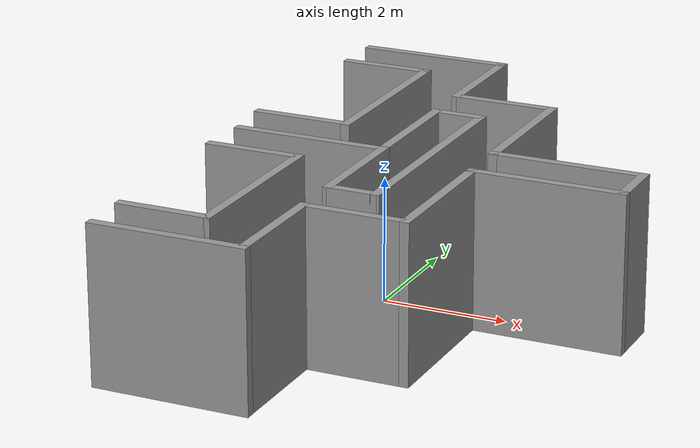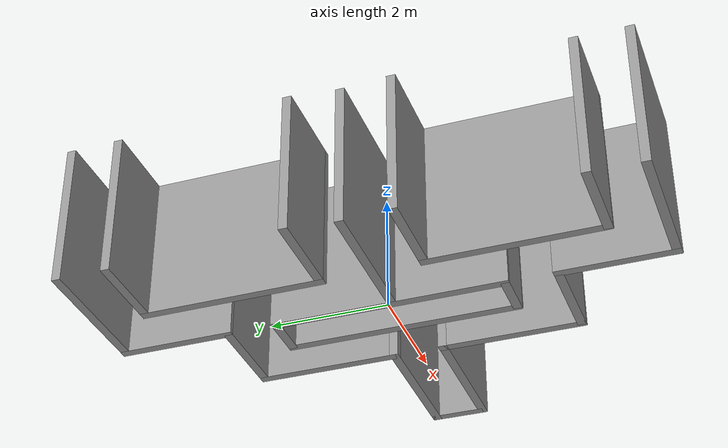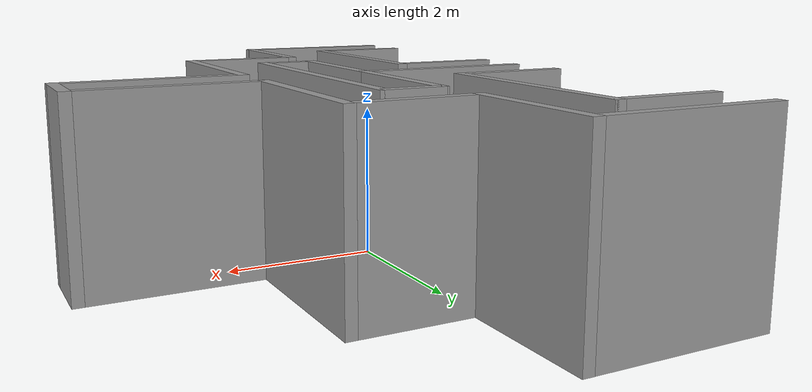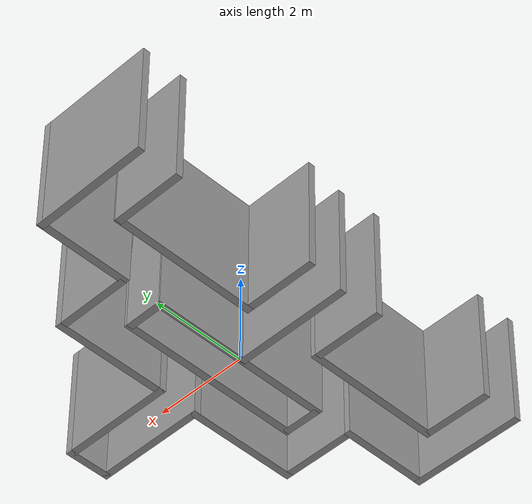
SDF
<?xml version='1.0'?>
<sdf version='1.7'>
  <model name='maze2.0'>
    <link name='Wall_101'>
      <pose>0.75 0 0 0 -0 1.5708</pose>
      <self_collide>0</self_collide>
      <enable_wind>0</enable_wind>
      <kinematic>0</kinematic>
      <visual name='Wall_101_Visual'>
        <pose>0 0 1.25 0 -0 0</pose>
        <geometry>
          <box>
            <size>4 0.15 2.5</size>
          </box>
        </geometry>
        <material>
          <script>
            <uri>file://media/materials/scripts/gazebo.material</uri>
            <name>Gazebo/Grey</name>
          </script>
          <ambient>1 1 1 1</ambient>
          <shader type='pixel'/>
        </material>
        <meta>
          <layer>0</layer>
        </meta>
        <transparency>0</transparency>
        <cast_shadows>1</cast_shadows>
      </visual>
      <collision name='Wall_101_Collision'>
        <laser_retro>0</laser_retro>
        <max_contacts>10</max_contacts>
        <pose>0 0 1.25 0 -0 0</pose>
        <geometry>
          <box>
            <size>4 0.15 2.5</size>
          </box>
        </geometry>
        <surface>
          <friction>
            <ode>
              <mu>1</mu>
              <mu2>1</mu2>
              <fdir1>0 0 0</fdir1>
              <slip1>0</slip1>
              <slip2>0</slip2>
            </ode>
            <torsional>
              <coefficient>1</coefficient>
              <patch_radius>0</patch_radius>
              <surface_radius>0</surface_radius>
              <use_patch_radius>1</use_patch_radius>
              <ode>
                <slip>0</slip>
              </ode>
            </torsional>
          </friction>
          <bounce>
            <restitution_coefficient>0</restitution_coefficient>
            <threshold>1e+06</threshold>
          </bounce>
          <contact>
            <collide_without_contact>0</collide_without_contact>
            <collide_without_contact_bitmask>1</collide_without_contact_bitmask>
            <collide_bitmask>1</collide_bitmask>
            <ode>
              <soft_cfm>0</soft_cfm>
              <soft_erp>0.2</soft_erp>
              <kp>1e+13</kp>
              <kd>1</kd>
              <max_vel>0.01</max_vel>
              <min_depth>0</min_depth>
            </ode>
            <bullet>
              <split_impulse>1</split_impulse>
              <split_impulse_penetration_threshold>-0.01</split_impulse_penetration_threshold>
              <soft_cfm>0</soft_cfm>
              <soft_erp>0.2</soft_erp>
              <kp>1e+13</kp>
              <kd>1</kd>
            </bullet>
          </contact>
        </surface>
      </collision>
    </link>
    <link name='Wall_105'>
      <pose>0.774711 2.77479 0 0 -0 0</pose>
      <self_collide>0</self_collide>
      <enable_wind>0</enable_wind>
      <kinematic>0</kinematic>
      <inertial>
        <inertia>
          <ixx>0</ixx>
          <ixy>0</ixy>
          <ixz>0</ixz>
          <iyy>0</iyy>
          <iyz>0</iyz>
          <izz>0</izz>
        </inertia>
        <mass>0</mass>
        <pose>0 0 0 0 -0 0</pose>
      </inertial>
      <visual name='Wall_105_Visual'>
        <pose>0 0 1.25 0 -0 0</pose>
        <geometry>
          <box>
            <size>1.53068 0.15 2.5</size>
          </box>
        </geometry>
        <material>
          <script>
            <uri>file://media/materials/scripts/gazebo.material</uri>
            <name>Gazebo/Grey</name>
          </script>
          <ambient>1 1 1 1</ambient>
          <shader type='pixel'/>
        </material>
        <meta>
          <layer>0</layer>
        </meta>
        <transparency>0</transparency>
        <cast_shadows>1</cast_shadows>
      </visual>
      <collision name='Wall_105_Collision'>
        <laser_retro>0</laser_retro>
        <max_contacts>10</max_contacts>
        <pose>0 0 1.25 0 -0 0</pose>
        <geometry>
          <box>
            <size>1.53068 0.15 2.5</size>
          </box>
        </geometry>
        <surface>
          <friction>
            <ode>
              <mu>1</mu>
              <mu2>1</mu2>
              <fdir1>0 0 0</fdir1>
              <slip1>0</slip1>
              <slip2>0</slip2>
            </ode>
            <torsional>
              <coefficient>1</coefficient>
              <patch_radius>0</patch_radius>
              <surface_radius>0</surface_radius>
              <use_patch_radius>1</use_patch_radius>
              <ode>
                <slip>0</slip>
              </ode>
            </torsional>
          </friction>
          <bounce>
            <restitution_coefficient>0</restitution_coefficient>
            <threshold>1e+06</threshold>
          </bounce>
          <contact>
            <collide_without_contact>0</collide_without_contact>
            <collide_without_contact_bitmask>1</collide_without_contact_bitmask>
            <collide_bitmask>1</collide_bitmask>
            <ode>
              <soft_cfm>0</soft_cfm>
              <soft_erp>0.2</soft_erp>
              <kp>1e+13</kp>
              <kd>1</kd>
              <max_vel>0.01</max_vel>
              <min_depth>0</min_depth>
            </ode>
            <bullet>
              <split_impulse>1</split_impulse>
              <split_impulse_penetration_threshold>-0.01</split_impulse_penetration_threshold>
              <soft_cfm>0</soft_cfm>
              <soft_erp>0.2</soft_erp>
              <kp>1e+13</kp>
              <kd>1</kd>
            </bullet>
          </contact>
        </surface>
      </collision>
    </link>
    <link name='Wall_108'>
      <pose>0 -3.7 0 0 0 -1.5708</pose>
      <self_collide>0</self_collide>
      <enable_wind>0</enable_wind>
      <kinematic>0</kinematic>
      <gravity>1</gravity>
      <inertial>
        <mass>1</mass>
        <pose>0 0 0 0 -0 0</pose>
        <inertia>
          <ixx>1</ixx>
          <ixy>0</ixy>
          <ixz>0</ixz>
          <iyy>1</iyy>
          <iyz>0</iyz>
          <izz>1</izz>
        </inertia>
      </inertial>
      <visual name='Wall_108_Visual'>
        <pose>0 0 1.25 0 -0 0</pose>
        <geometry>
          <box>
            <size>2 0.15 2.5</size>
          </box>
        </geometry>
        <material>
          <script>
            <uri>file://media/materials/scripts/gazebo.material</uri>
            <name>Gazebo/Grey</name>
          </script>
          <ambient>1 1 1 1</ambient>
          <shader type='pixel'>
            <normal_map>__default__</normal_map>
          </shader>
          <diffuse>0.7 0.7 0.7 1</diffuse>
          <specular>0.01 0.01 0.01 1</specular>
          <emissive>0 0 0 1</emissive>
        </material>
        <meta>
          <layer>0</layer>
        </meta>
        <transparency>0</transparency>
        <cast_shadows>1</cast_shadows>
      </visual>
      <collision name='Wall_108_Collision'>
        <laser_retro>0</laser_retro>
        <max_contacts>10</max_contacts>
        <pose>0 0 1.25 0 -0 0</pose>
        <geometry>
          <box>
            <size>2 0.15 2.5</size>
          </box>
        </geometry>
        <surface>
          <friction>
            <ode>
              <mu>1</mu>
              <mu2>1</mu2>
              <fdir1>0 0 0</fdir1>
              <slip1>0</slip1>
              <slip2>0</slip2>
            </ode>
            <torsional>
              <coefficient>1</coefficient>
              <patch_radius>0</patch_radius>
              <surface_radius>0</surface_radius>
              <use_patch_radius>1</use_patch_radius>
              <ode>
                <slip>0</slip>
              </ode>
            </torsional>
          </friction>
          <bounce>
            <restitution_coefficient>0</restitution_coefficient>
            <threshold>1e+06</threshold>
          </bounce>
          <contact>
            <collide_without_contact>0</collide_without_contact>
            <collide_without_contact_bitmask>1</collide_without_contact_bitmask>
            <collide_bitmask>1</collide_bitmask>
            <ode>
              <soft_cfm>0</soft_cfm>
              <soft_erp>0.2</soft_erp>
              <kp>1e+13</kp>
              <kd>1</kd>
              <max_vel>0.01</max_vel>
              <min_depth>0</min_depth>
            </ode>
            <bullet>
              <split_impulse>1</split_impulse>
              <split_impulse_penetration_threshold>-0.01</split_impulse_penetration_threshold>
              <soft_cfm>0</soft_cfm>
              <soft_erp>0.2</soft_erp>
              <kp>1e+13</kp>
              <kd>1</kd>
            </bullet>
          </contact>
        </surface>
      </collision>
    </link>
    <link name='Wall_109'>
      <pose>-1.17194 -4.625 0 0 -0 3.14159</pose>
      <self_collide>0</self_collide>
      <enable_wind>0</enable_wind>
      <kinematic>0</kinematic>
      <gravity>1</gravity>
      <inertial>
        <mass>1</mass>
        <pose>0 0 0 0 -0 0</pose>
        <inertia>
          <ixx>1</ixx>
          <ixy>0</ixy>
          <ixz>0</ixz>
          <iyy>1</iyy>
          <iyz>0</iyz>
          <izz>1</izz>
        </inertia>
      </inertial>
      <visual name='Wall_109_Visual'>
        <pose>0 0 1.25 0 -0 0</pose>
        <geometry>
          <box>
            <size>2.5 0.15 2.5</size>
          </box>
        </geometry>
        <material>
          <script>
            <uri>file://media/materials/scripts/gazebo.material</uri>
            <name>Gazebo/Grey</name>
          </script>
          <ambient>1 1 1 1</ambient>
          <shader type='pixel'>
            <normal_map>__default__</normal_map>
          </shader>
          <diffuse>0.7 0.7 0.7 1</diffuse>
          <specular>0.01 0.01 0.01 1</specular>
          <emissive>0 0 0 1</emissive>
        </material>
        <meta>
          <layer>0</layer>
        </meta>
        <transparency>0</transparency>
        <cast_shadows>1</cast_shadows>
      </visual>
      <collision name='Wall_109_Collision'>
        <laser_retro>0</laser_retro>
        <max_contacts>10</max_contacts>
        <pose>0 0 1.25 0 -0 0</pose>
        <geometry>
          <box>
            <size>2.5 0.15 2.5</size>
          </box>
        </geometry>
        <surface>
          <friction>
            <ode>
              <mu>1</mu>
              <mu2>1</mu2>
              <fdir1>0 0 0</fdir1>
              <slip1>0</slip1>
              <slip2>0</slip2>
            </ode>
            <torsional>
              <coefficient>1</coefficient>
              <patch_radius>0</patch_radius>
              <surface_radius>0</surface_radius>
              <use_patch_radius>1</use_patch_radius>
              <ode>
                <slip>0</slip>
              </ode>
            </torsional>
          </friction>
          <bounce>
            <restitution_coefficient>0</restitution_coefficient>
            <threshold>1e+06</threshold>
          </bounce>
          <contact>
            <collide_without_contact>0</collide_without_contact>
            <collide_without_contact_bitmask>1</collide_without_contact_bitmask>
            <collide_bitmask>1</collide_bitmask>
            <ode>
              <soft_cfm>0</soft_cfm>
              <soft_erp>0.2</soft_erp>
              <kp>1e+13</kp>
              <kd>1</kd>
              <max_vel>0.01</max_vel>
              <min_depth>0</min_depth>
            </ode>
            <bullet>
              <split_impulse>1</split_impulse>
              <split_impulse_penetration_threshold>-0.01</split_impulse_penetration_threshold>
              <soft_cfm>0</soft_cfm>
              <soft_erp>0.2</soft_erp>
              <kp>1e+13</kp>
              <kd>1</kd>
            </bullet>
          </contact>
        </surface>
      </collision>
    </link>
    <link name='Wall_111'>
      <pose>0 3.7011 0 0 -0 1.5708</pose>
      <self_collide>0</self_collide>
      <enable_wind>0</enable_wind>
      <kinematic>0</kinematic>
      <gravity>1</gravity>
      <inertial>
        <mass>1</mass>
        <pose>0 0 0 0 -0 0</pose>
        <inertia>
          <ixx>1</ixx>
          <ixy>0</ixy>
          <ixz>0</ixz>
          <iyy>1</iyy>
          <iyz>0</iyz>
          <izz>1</izz>
        </inertia>
      </inertial>
      <visual name='Wall_111_Visual'>
        <pose>0 0 1.25 0 -0 0</pose>
        <geometry>
          <box>
            <size>2 0.15 2.5</size>
          </box>
        </geometry>
        <material>
          <script>
            <uri>file://media/materials/scripts/gazebo.material</uri>
            <name>Gazebo/Grey</name>
          </script>
          <ambient>1 1 1 1</ambient>
          <shader type='pixel'>
            <normal_map>__default__</normal_map>
          </shader>
          <diffuse>0.7 0.7 0.7 1</diffuse>
          <specular>0.01 0.01 0.01 1</specular>
          <emissive>0 0 0 1</emissive>
        </material>
        <meta>
          <layer>0</layer>
        </meta>
        <transparency>0</transparency>
        <cast_shadows>1</cast_shadows>
      </visual>
      <collision name='Wall_111_Collision'>
        <laser_retro>0</laser_retro>
        <max_contacts>10</max_contacts>
        <pose>0 0 1.25 0 -0 0</pose>
        <geometry>
          <box>
            <size>2 0.15 2.5</size>
          </box>
        </geometry>
        <surface>
          <friction>
            <ode>
              <mu>1</mu>
              <mu2>1</mu2>
              <fdir1>0 0 0</fdir1>
              <slip1>0</slip1>
              <slip2>0</slip2>
            </ode>
            <torsional>
              <coefficient>1</coefficient>
              <patch_radius>0</patch_radius>
              <surface_radius>0</surface_radius>
              <use_patch_radius>1</use_patch_radius>
              <ode>
                <slip>0</slip>
              </ode>
            </torsional>
          </friction>
          <bounce>
            <restitution_coefficient>0</restitution_coefficient>
            <threshold>1e+06</threshold>
          </bounce>
          <contact>
            <collide_without_contact>0</collide_without_contact>
            <collide_without_contact_bitmask>1</collide_without_contact_bitmask>
            <collide_bitmask>1</collide_bitmask>
            <ode>
              <soft_cfm>0</soft_cfm>
              <soft_erp>0.2</soft_erp>
              <kp>1e+13</kp>
              <kd>1</kd>
              <max_vel>0.01</max_vel>
              <min_depth>0</min_depth>
            </ode>
            <bullet>
              <split_impulse>1</split_impulse>
              <split_impulse_penetration_threshold>-0.01</split_impulse_penetration_threshold>
              <soft_cfm>0</soft_cfm>
              <soft_erp>0.2</soft_erp>
              <kp>1e+13</kp>
              <kd>1</kd>
            </bullet>
          </contact>
        </surface>
      </collision>
    </link>
    <link name='Wall_112'>
      <pose>-1.1964 4.625 0 0 -0 3.14159</pose>
      <self_collide>0</self_collide>
      <enable_wind>0</enable_wind>
      <kinematic>0</kinematic>
      <visual name='Wall_112_Visual'>
        <pose>0 0 1.25 0 -0 0</pose>
        <geometry>
          <box>
            <size>2.5 0.15 2.5</size>
          </box>
        </geometry>
        <material>
          <script>
            <uri>file://media/materials/scripts/gazebo.material</uri>
            <name>Gazebo/Grey</name>
          </script>
          <ambient>1 1 1 1</ambient>
          <shader type='pixel'/>
        </material>
        <meta>
          <layer>0</layer>
        </meta>
        <transparency>0</transparency>
        <cast_shadows>1</cast_shadows>
      </visual>
      <collision name='Wall_112_Collision'>
        <laser_retro>0</laser_retro>
        <max_contacts>10</max_contacts>
        <pose>0 0 1.25 0 -0 0</pose>
        <geometry>
          <box>
            <size>2.5 0.15 2.5</size>
          </box>
        </geometry>
        <surface>
          <friction>
            <ode>
              <mu>1</mu>
              <mu2>1</mu2>
              <fdir1>0 0 0</fdir1>
              <slip1>0</slip1>
              <slip2>0</slip2>
            </ode>
            <torsional>
              <coefficient>1</coefficient>
              <patch_radius>0</patch_radius>
              <surface_radius>0</surface_radius>
              <use_patch_radius>1</use_patch_radius>
              <ode>
                <slip>0</slip>
              </ode>
            </torsional>
          </friction>
          <bounce>
            <restitution_coefficient>0</restitution_coefficient>
            <threshold>1e+06</threshold>
          </bounce>
          <contact>
            <collide_without_contact>0</collide_without_contact>
            <collide_without_contact_bitmask>1</collide_without_contact_bitmask>
            <collide_bitmask>1</collide_bitmask>
            <ode>
              <soft_cfm>0</soft_cfm>
              <soft_erp>0.2</soft_erp>
              <kp>1e+13</kp>
              <kd>1</kd>
              <max_vel>0.01</max_vel>
              <min_depth>0</min_depth>
            </ode>
            <bullet>
              <split_impulse>1</split_impulse>
              <split_impulse_penetration_threshold>-0.01</split_impulse_penetration_threshold>
              <soft_cfm>0</soft_cfm>
              <soft_erp>0.2</soft_erp>
              <kp>1e+13</kp>
              <kd>1</kd>
            </bullet>
          </contact>
        </surface>
      </collision>
    </link>
    <link name='Wall_115'>
      <pose>-1.7 -3.775 0 0 -0 0</pose>
      <self_collide>0</self_collide>
      <enable_wind>0</enable_wind>
      <kinematic>0</kinematic>
      <gravity>1</gravity>
      <inertial>
        <mass>1</mass>
        <pose>0 0 0 0 -0 0</pose>
        <inertia>
          <ixx>1</ixx>
          <ixy>0</ixy>
          <ixz>0</ixz>
          <iyy>1</iyy>
          <iyz>0</iyz>
          <izz>1</izz>
        </inertia>
      </inertial>
      <visual name='Wall_115_Visual'>
        <pose>0 0 1.25 0 -0 0</pose>
        <geometry>
          <box>
            <size>1.5 0.15 2.5</size>
          </box>
        </geometry>
        <material>
          <script>
            <uri>file://media/materials/scripts/gazebo.material</uri>
            <name>Gazebo/Grey</name>
          </script>
          <ambient>1 1 1 1</ambient>
          <shader type='pixel'>
            <normal_map>__default__</normal_map>
          </shader>
          <diffuse>0.7 0.7 0.7 1</diffuse>
          <specular>0.01 0.01 0.01 1</specular>
          <emissive>0 0 0 1</emissive>
        </material>
        <meta>
          <layer>0</layer>
        </meta>
        <transparency>0</transparency>
        <cast_shadows>1</cast_shadows>
      </visual>
      <collision name='Wall_115_Collision'>
        <laser_retro>0</laser_retro>
        <max_contacts>10</max_contacts>
        <pose>0 0 1.25 0 -0 0</pose>
        <geometry>
          <box>
            <size>1.5 0.15 2.5</size>
          </box>
        </geometry>
        <surface>
          <friction>
            <ode>
              <mu>1</mu>
              <mu2>1</mu2>
              <fdir1>0 0 0</fdir1>
              <slip1>0</slip1>
              <slip2>0</slip2>
            </ode>
            <torsional>
              <coefficient>1</coefficient>
              <patch_radius>0</patch_radius>
              <surface_radius>0</surface_radius>
              <use_patch_radius>1</use_patch_radius>
              <ode>
                <slip>0</slip>
              </ode>
            </torsional>
          </friction>
          <bounce>
            <restitution_coefficient>0</restitution_coefficient>
            <threshold>1e+06</threshold>
          </bounce>
          <contact>
            <collide_without_contact>0</collide_without_contact>
            <collide_without_contact_bitmask>1</collide_without_contact_bitmask>
            <collide_bitmask>1</collide_bitmask>
            <ode>
              <soft_cfm>0</soft_cfm>
              <soft_erp>0.2</soft_erp>
              <kp>1e+13</kp>
              <kd>1</kd>
              <max_vel>0.01</max_vel>
              <min_depth>0</min_depth>
            </ode>
            <bullet>
              <split_impulse>1</split_impulse>
              <split_impulse_penetration_threshold>-0.01</split_impulse_penetration_threshold>
              <soft_cfm>0</soft_cfm>
              <soft_erp>0.2</soft_erp>
              <kp>1e+13</kp>
              <kd>1</kd>
            </bullet>
          </contact>
        </surface>
      </collision>
    </link>
    <link name='Wall_119'>
      <pose>-1.77392 -0.925 0 0 -0 0</pose>
      <self_collide>0</self_collide>
      <enable_wind>0</enable_wind>
      <kinematic>0</kinematic>
      <visual name='Wall_119_Visual'>
        <pose>0 0 1.25 0 -0 0</pose>
        <geometry>
          <box>
            <size>1.5 0.15 2.5</size>
          </box>
        </geometry>
        <material>
          <script>
            <uri>file://media/materials/scripts/gazebo.material</uri>
            <name>Gazebo/Grey</name>
          </script>
          <ambient>1 1 1 1</ambient>
          <shader type='pixel'/>
        </material>
        <meta>
          <layer>0</layer>
        </meta>
        <transparency>0</transparency>
        <cast_shadows>1</cast_shadows>
      </visual>
      <collision name='Wall_119_Collision'>
        <laser_retro>0</laser_retro>
        <max_contacts>10</max_contacts>
        <pose>0 0 1.25 0 -0 0</pose>
        <geometry>
          <box>
            <size>1.5 0.15 2.5</size>
          </box>
        </geometry>
        <surface>
          <friction>
            <ode>
              <mu>1</mu>
              <mu2>1</mu2>
              <fdir1>0 0 0</fdir1>
              <slip1>0</slip1>
              <slip2>0</slip2>
            </ode>
            <torsional>
              <coefficient>1</coefficient>
              <patch_radius>0</patch_radius>
              <surface_radius>0</surface_radius>
              <use_patch_radius>1</use_patch_radius>
              <ode>
                <slip>0</slip>
              </ode>
            </torsional>
          </friction>
          <bounce>
            <restitution_coefficient>0</restitution_coefficient>
            <threshold>1e+06</threshold>
          </bounce>
          <contact>
            <collide_without_contact>0</collide_without_contact>
            <collide_without_contact_bitmask>1</collide_without_contact_bitmask>
            <collide_bitmask>1</collide_bitmask>
            <ode>
              <soft_cfm>0</soft_cfm>
              <soft_erp>0.2</soft_erp>
              <kp>1e+13</kp>
              <kd>1</kd>
              <max_vel>0.01</max_vel>
              <min_depth>0</min_depth>
            </ode>
            <bullet>
              <split_impulse>1</split_impulse>
              <split_impulse_penetration_threshold>-0.01</split_impulse_penetration_threshold>
              <soft_cfm>0</soft_cfm>
              <soft_erp>0.2</soft_erp>
              <kp>1e+13</kp>
              <kd>1</kd>
            </bullet>
          </contact>
        </surface>
      </collision>
    </link>
    <link name='Wall_120'>
      <pose>-1 -2.35 0 0 0 -1.5708</pose>
      <self_collide>0</self_collide>
      <enable_wind>0</enable_wind>
      <kinematic>0</kinematic>
      <gravity>1</gravity>
      <inertial>
        <mass>1</mass>
        <pose>0 0 0 0 -0 0</pose>
        <inertia>
          <ixx>1</ixx>
          <ixy>0</ixy>
          <ixz>0</ixz>
          <iyy>1</iyy>
          <iyz>0</iyz>
          <izz>1</izz>
        </inertia>
      </inertial>
      <visual name='Wall_120_Visual'>
        <pose>0 0 1.25 0 -0 0</pose>
        <geometry>
          <box>
            <size>3 0.15 2.5</size>
          </box>
        </geometry>
        <material>
          <script>
            <uri>file://media/materials/scripts/gazebo.material</uri>
            <name>Gazebo/Grey</name>
          </script>
          <ambient>1 1 1 1</ambient>
          <shader type='pixel'>
            <normal_map>__default__</normal_map>
          </shader>
          <diffuse>0.7 0.7 0.7 1</diffuse>
          <specular>0.01 0.01 0.01 1</specular>
          <emissive>0 0 0 1</emissive>
        </material>
        <meta>
          <layer>0</layer>
        </meta>
        <transparency>0</transparency>
        <cast_shadows>1</cast_shadows>
      </visual>
      <collision name='Wall_120_Collision'>
        <laser_retro>0</laser_retro>
        <max_contacts>10</max_contacts>
        <pose>0 0 1.25 0 -0 0</pose>
        <geometry>
          <box>
            <size>3 0.15 2.5</size>
          </box>
        </geometry>
        <surface>
          <friction>
            <ode>
              <mu>1</mu>
              <mu2>1</mu2>
              <fdir1>0 0 0</fdir1>
              <slip1>0</slip1>
              <slip2>0</slip2>
            </ode>
            <torsional>
              <coefficient>1</coefficient>
              <patch_radius>0</patch_radius>
              <surface_radius>0</surface_radius>
              <use_patch_radius>1</use_patch_radius>
              <ode>
                <slip>0</slip>
              </ode>
            </torsional>
          </friction>
          <bounce>
            <restitution_coefficient>0</restitution_coefficient>
            <threshold>1e+06</threshold>
          </bounce>
          <contact>
            <collide_without_contact>0</collide_without_contact>
            <collide_without_contact_bitmask>1</collide_without_contact_bitmask>
            <collide_bitmask>1</collide_bitmask>
            <ode>
              <soft_cfm>0</soft_cfm>
              <soft_erp>0.2</soft_erp>
              <kp>1e+13</kp>
              <kd>1</kd>
              <max_vel>0.01</max_vel>
              <min_depth>0</min_depth>
            </ode>
            <bullet>
              <split_impulse>1</split_impulse>
              <split_impulse_penetration_threshold>-0.01</split_impulse_penetration_threshold>
              <soft_cfm>0</soft_cfm>
              <soft_erp>0.2</soft_erp>
              <kp>1e+13</kp>
              <kd>1</kd>
            </bullet>
          </contact>
        </surface>
      </collision>
    </link>
    <link name='Wall_123'>
      <pose>-1.82436 0.775 0 0 -0 0</pose>
      <self_collide>0</self_collide>
      <enable_wind>0</enable_wind>
      <kinematic>0</kinematic>
      <visual name='Wall_123_Visual'>
        <pose>0 0 1.25 0 -0 0</pose>
        <geometry>
          <box>
            <size>1.5 0.15 2.5</size>
          </box>
        </geometry>
        <material>
          <script>
            <uri>file://media/materials/scripts/gazebo.material</uri>
            <name>Gazebo/Grey</name>
          </script>
          <ambient>1 1 1 1</ambient>
          <shader type='pixel'/>
        </material>
        <meta>
          <layer>0</layer>
        </meta>
        <transparency>0</transparency>
        <cast_shadows>1</cast_shadows>
      </visual>
      <collision name='Wall_123_Collision'>
        <laser_retro>0</laser_retro>
        <max_contacts>10</max_contacts>
        <pose>0 0 1.25 0 -0 0</pose>
        <geometry>
          <box>
            <size>1.5 0.15 2.5</size>
          </box>
        </geometry>
        <surface>
          <friction>
            <ode>
              <mu>1</mu>
              <mu2>1</mu2>
              <fdir1>0 0 0</fdir1>
              <slip1>0</slip1>
              <slip2>0</slip2>
            </ode>
            <torsional>
              <coefficient>1</coefficient>
              <patch_radius>0</patch_radius>
              <surface_radius>0</surface_radius>
              <use_patch_radius>1</use_patch_radius>
              <ode>
                <slip>0</slip>
              </ode>
            </torsional>
          </friction>
          <bounce>
            <restitution_coefficient>0</restitution_coefficient>
            <threshold>1e+06</threshold>
          </bounce>
          <contact>
            <collide_without_contact>0</collide_without_contact>
            <collide_without_contact_bitmask>1</collide_without_contact_bitmask>
            <collide_bitmask>1</collide_bitmask>
            <ode>
              <soft_cfm>0</soft_cfm>
              <soft_erp>0.2</soft_erp>
              <kp>1e+13</kp>
              <kd>1</kd>
              <max_vel>0.01</max_vel>
              <min_depth>0</min_depth>
            </ode>
            <bullet>
              <split_impulse>1</split_impulse>
              <split_impulse_penetration_threshold>-0.01</split_impulse_penetration_threshold>
              <soft_cfm>0</soft_cfm>
              <soft_erp>0.2</soft_erp>
              <kp>1e+13</kp>
              <kd>1</kd>
            </bullet>
          </contact>
        </surface>
      </collision>
    </link>
    <link name='Wall_126'>
      <pose>-1.7 3.775 0 0 -0 0</pose>
      <self_collide>0</self_collide>
      <enable_wind>0</enable_wind>
      <kinematic>0</kinematic>
      <gravity>1</gravity>
      <inertial>
        <mass>1</mass>
        <pose>0 0 0 0 -0 0</pose>
        <inertia>
          <ixx>1</ixx>
          <ixy>0</ixy>
          <ixz>0</ixz>
          <iyy>1</iyy>
          <iyz>0</iyz>
          <izz>1</izz>
        </inertia>
      </inertial>
      <visual name='Wall_126_Visual'>
        <pose>0 0 1.25 0 -0 0</pose>
        <geometry>
          <box>
            <size>1.5 0.15 2.5</size>
          </box>
        </geometry>
        <material>
          <script>
            <uri>file://media/materials/scripts/gazebo.material</uri>
            <name>Gazebo/Grey</name>
          </script>
          <ambient>1 1 1 1</ambient>
          <shader type='pixel'>
            <normal_map>__default__</normal_map>
          </shader>
          <diffuse>0.7 0.7 0.7 1</diffuse>
          <specular>0.01 0.01 0.01 1</specular>
          <emissive>0 0 0 1</emissive>
        </material>
        <meta>
          <layer>0</layer>
        </meta>
        <transparency>0</transparency>
        <cast_shadows>1</cast_shadows>
      </visual>
      <collision name='Wall_126_Collision'>
        <laser_retro>0</laser_retro>
        <max_contacts>10</max_contacts>
        <pose>0 0 1.25 0 -0 0</pose>
        <geometry>
          <box>
            <size>1.5 0.15 2.5</size>
          </box>
        </geometry>
        <surface>
          <friction>
            <ode>
              <mu>1</mu>
              <mu2>1</mu2>
              <fdir1>0 0 0</fdir1>
              <slip1>0</slip1>
              <slip2>0</slip2>
            </ode>
            <torsional>
              <coefficient>1</coefficient>
              <patch_radius>0</patch_radius>
              <surface_radius>0</surface_radius>
              <use_patch_radius>1</use_patch_radius>
              <ode>
                <slip>0</slip>
              </ode>
            </torsional>
          </friction>
          <bounce>
            <restitution_coefficient>0</restitution_coefficient>
            <threshold>1e+06</threshold>
          </bounce>
          <contact>
            <collide_without_contact>0</collide_without_contact>
            <collide_without_contact_bitmask>1</collide_without_contact_bitmask>
            <collide_bitmask>1</collide_bitmask>
            <ode>
              <soft_cfm>0</soft_cfm>
              <soft_erp>0.2</soft_erp>
              <kp>1e+13</kp>
              <kd>1</kd>
              <max_vel>0.01</max_vel>
              <min_depth>0</min_depth>
            </ode>
            <bullet>
              <split_impulse>1</split_impulse>
              <split_impulse_penetration_threshold>-0.01</split_impulse_penetration_threshold>
              <soft_cfm>0</soft_cfm>
              <soft_erp>0.2</soft_erp>
              <kp>1e+13</kp>
              <kd>1</kd>
            </bullet>
          </contact>
        </surface>
      </collision>
    </link>
    <link name='Wall_127'>
      <pose>-1 2.275 0 0 0 -1.5708</pose>
      <self_collide>0</self_collide>
      <enable_wind>0</enable_wind>
      <kinematic>0</kinematic>
      <gravity>1</gravity>
      <inertial>
        <mass>1</mass>
        <pose>-0.05 0 0 0 -0 0</pose>
        <inertia>
          <ixx>1</ixx>
          <ixy>0</ixy>
          <ixz>0</ixz>
          <iyy>1</iyy>
          <iyz>0</iyz>
          <izz>1</izz>
        </inertia>
      </inertial>
      <visual name='Wall_127_Visual'>
        <pose>0 0 1.25 0 -0 0</pose>
        <geometry>
          <box>
            <size>3.15 0.15 2.5</size>
          </box>
        </geometry>
        <material>
          <script>
            <uri>file://media/materials/scripts/gazebo.material</uri>
            <name>Gazebo/Grey</name>
          </script>
          <ambient>1 1 1 1</ambient>
          <shader type='pixel'>
            <normal_map>__default__</normal_map>
          </shader>
          <diffuse>0.7 0.7 0.7 1</diffuse>
          <specular>0.01 0.01 0.01 1</specular>
          <emissive>0 0 0 1</emissive>
        </material>
        <meta>
          <layer>0</layer>
        </meta>
        <transparency>0</transparency>
        <cast_shadows>1</cast_shadows>
      </visual>
      <collision name='Wall_127_Collision'>
        <laser_retro>0</laser_retro>
        <max_contacts>10</max_contacts>
        <pose>0 0 1.25 0 -0 0</pose>
        <geometry>
          <box>
            <size>3.15 0.15 2.5</size>
          </box>
        </geometry>
        <surface>
          <friction>
            <ode>
              <mu>1</mu>
              <mu2>1</mu2>
              <fdir1>0 0 0</fdir1>
              <slip1>0</slip1>
              <slip2>0</slip2>
            </ode>
            <torsional>
              <coefficient>1</coefficient>
              <patch_radius>0</patch_radius>
              <surface_radius>0</surface_radius>
              <use_patch_radius>1</use_patch_radius>
              <ode>
                <slip>0</slip>
              </ode>
            </torsional>
          </friction>
          <bounce>
            <restitution_coefficient>0</restitution_coefficient>
            <threshold>1e+06</threshold>
          </bounce>
          <contact>
            <collide_without_contact>0</collide_without_contact>
            <collide_without_contact_bitmask>1</collide_without_contact_bitmask>
            <collide_bitmask>1</collide_bitmask>
            <ode>
              <soft_cfm>0</soft_cfm>
              <soft_erp>0.2</soft_erp>
              <kp>1e+13</kp>
              <kd>1</kd>
              <max_vel>0.01</max_vel>
              <min_depth>0</min_depth>
            </ode>
            <bullet>
              <split_impulse>1</split_impulse>
              <split_impulse_penetration_threshold>-0.01</split_impulse_penetration_threshold>
              <soft_cfm>0</soft_cfm>
              <soft_erp>0.2</soft_erp>
              <kp>1e+13</kp>
              <kd>1</kd>
            </bullet>
          </contact>
        </surface>
      </collision>
    </link>
    <link name='Wall_62'>
      <pose>3.95 0 0 0 0 -1.5708</pose>
      <self_collide>0</self_collide>
      <enable_wind>0</enable_wind>
      <kinematic>0</kinematic>
      <visual name='Wall_62_Visual'>
        <pose>0 0 1.25 0 -0 0</pose>
        <geometry>
          <box>
            <size>1 0.15 2.5</size>
          </box>
        </geometry>
        <material>
          <script>
            <uri>file://media/materials/scripts/gazebo.material</uri>
            <name>Gazebo/Grey</name>
          </script>
          <ambient>1 1 1 1</ambient>
          <shader type='pixel'/>
        </material>
        <meta>
          <layer>0</layer>
        </meta>
        <transparency>0</transparency>
        <cast_shadows>1</cast_shadows>
      </visual>
      <collision name='Wall_62_Collision'>
        <laser_retro>0</laser_retro>
        <max_contacts>10</max_contacts>
        <pose>0 0 1.25 0 -0 0</pose>
        <geometry>
          <box>
            <size>1 0.15 2.5</size>
          </box>
        </geometry>
        <surface>
          <friction>
            <ode>
              <mu>1</mu>
              <mu2>1</mu2>
              <fdir1>0 0 0</fdir1>
              <slip1>0</slip1>
              <slip2>0</slip2>
            </ode>
            <torsional>
              <coefficient>1</coefficient>
              <patch_radius>0</patch_radius>
              <surface_radius>0</surface_radius>
              <use_patch_radius>1</use_patch_radius>
              <ode>
                <slip>0</slip>
              </ode>
            </torsional>
          </friction>
          <bounce>
            <restitution_coefficient>0</restitution_coefficient>
            <threshold>1e+06</threshold>
          </bounce>
          <contact>
            <collide_without_contact>0</collide_without_contact>
            <collide_without_contact_bitmask>1</collide_without_contact_bitmask>
            <collide_bitmask>1</collide_bitmask>
            <ode>
              <soft_cfm>0</soft_cfm>
              <soft_erp>0.2</soft_erp>
              <kp>1e+13</kp>
              <kd>1</kd>
              <max_vel>0.01</max_vel>
              <min_depth>0</min_depth>
            </ode>
            <bullet>
              <split_impulse>1</split_impulse>
              <split_impulse_penetration_threshold>-0.01</split_impulse_penetration_threshold>
              <soft_cfm>0</soft_cfm>
              <soft_erp>0.2</soft_erp>
              <kp>1e+13</kp>
              <kd>1</kd>
            </bullet>
          </contact>
        </surface>
      </collision>
    </link>
    <link name='Wall_64'>
      <pose>2.775 0.425 0 0 -0 3.14159</pose>
      <self_collide>0</self_collide>
      <enable_wind>0</enable_wind>
      <kinematic>0</kinematic>
      <visual name='Wall_64_Visual'>
        <pose>0 0 1.25 0 -0 0</pose>
        <geometry>
          <box>
            <size>2.5 0.15 2.5</size>
          </box>
        </geometry>
        <material>
          <script>
            <uri>file://media/materials/scripts/gazebo.material</uri>
            <name>Gazebo/Grey</name>
          </script>
          <ambient>1 1 1 1</ambient>
          <shader type='pixel'/>
        </material>
        <meta>
          <layer>0</layer>
        </meta>
        <transparency>0</transparency>
        <cast_shadows>1</cast_shadows>
      </visual>
      <collision name='Wall_64_Collision'>
        <laser_retro>0</laser_retro>
        <max_contacts>10</max_contacts>
        <pose>0 0 1.25 0 -0 0</pose>
        <geometry>
          <box>
            <size>2.5 0.15 2.5</size>
          </box>
        </geometry>
        <surface>
          <friction>
            <ode>
              <mu>1</mu>
              <mu2>1</mu2>
              <fdir1>0 0 0</fdir1>
              <slip1>0</slip1>
              <slip2>0</slip2>
            </ode>
            <torsional>
              <coefficient>1</coefficient>
              <patch_radius>0</patch_radius>
              <surface_radius>0</surface_radius>
              <use_patch_radius>1</use_patch_radius>
              <ode>
                <slip>0</slip>
              </ode>
            </torsional>
          </friction>
          <bounce>
            <restitution_coefficient>0</restitution_coefficient>
            <threshold>1e+06</threshold>
          </bounce>
          <contact>
            <collide_without_contact>0</collide_without_contact>
            <collide_without_contact_bitmask>1</collide_without_contact_bitmask>
            <collide_bitmask>1</collide_bitmask>
            <ode>
              <soft_cfm>0</soft_cfm>
              <soft_erp>0.2</soft_erp>
              <kp>1e+13</kp>
              <kd>1</kd>
              <max_vel>0.01</max_vel>
              <min_depth>0</min_depth>
            </ode>
            <bullet>
              <split_impulse>1</split_impulse>
              <split_impulse_penetration_threshold>-0.01</split_impulse_penetration_threshold>
              <soft_cfm>0</soft_cfm>
              <soft_erp>0.2</soft_erp>
              <kp>1e+13</kp>
              <kd>1</kd>
            </bullet>
          </contact>
        </surface>
      </collision>
    </link>
    <link name='Wall_66'>
      <pose>2.775 -0.425 0 0 -0 3.14159</pose>
      <self_collide>0</self_collide>
      <enable_wind>0</enable_wind>
      <kinematic>0</kinematic>
      <visual name='Wall_66_Visual'>
        <pose>0 0 1.25 0 -0 0</pose>
        <geometry>
          <box>
            <size>2.5 0.15 2.5</size>
          </box>
        </geometry>
        <material>
          <script>
            <uri>file://media/materials/scripts/gazebo.material</uri>
            <name>Gazebo/Grey</name>
          </script>
          <ambient>1 1 1 1</ambient>
          <shader type='pixel'/>
        </material>
        <meta>
          <layer>0</layer>
        </meta>
        <transparency>0</transparency>
        <cast_shadows>1</cast_shadows>
      </visual>
      <collision name='Wall_66_Collision'>
        <laser_retro>0</laser_retro>
        <max_contacts>10</max_contacts>
        <pose>0 0 1.25 0 -0 0</pose>
        <geometry>
          <box>
            <size>2.5 0.15 2.5</size>
          </box>
        </geometry>
        <surface>
          <friction>
            <ode>
              <mu>1</mu>
              <mu2>1</mu2>
              <fdir1>0 0 0</fdir1>
              <slip1>0</slip1>
              <slip2>0</slip2>
            </ode>
            <torsional>
              <coefficient>1</coefficient>
              <patch_radius>0</patch_radius>
              <surface_radius>0</surface_radius>
              <use_patch_radius>1</use_patch_radius>
              <ode>
                <slip>0</slip>
              </ode>
            </torsional>
          </friction>
          <bounce>
            <restitution_coefficient>0</restitution_coefficient>
            <threshold>1e+06</threshold>
          </bounce>
          <contact>
            <collide_without_contact>0</collide_without_contact>
            <collide_without_contact_bitmask>1</collide_without_contact_bitmask>
            <collide_bitmask>1</collide_bitmask>
            <ode>
              <soft_cfm>0</soft_cfm>
              <soft_erp>0.2</soft_erp>
              <kp>1e+13</kp>
              <kd>1</kd>
              <max_vel>0.01</max_vel>
              <min_depth>0</min_depth>
            </ode>
            <bullet>
              <split_impulse>1</split_impulse>
              <split_impulse_penetration_threshold>-0.01</split_impulse_penetration_threshold>
              <soft_cfm>0</soft_cfm>
              <soft_erp>0.2</soft_erp>
              <kp>1e+13</kp>
              <kd>1</kd>
            </bullet>
          </contact>
        </surface>
      </collision>
    </link>
    <link name='Wall_68'>
      <pose>1.6 -1.6 0 0 0 -1.5708</pose>
      <self_collide>0</self_collide>
      <enable_wind>0</enable_wind>
      <kinematic>0</kinematic>
      <visual name='Wall_68_Visual'>
        <pose>0 0 1.25 0 -0 0</pose>
        <geometry>
          <box>
            <size>2.5 0.15 2.5</size>
          </box>
        </geometry>
        <material>
          <script>
            <uri>file://media/materials/scripts/gazebo.material</uri>
            <name>Gazebo/Grey</name>
          </script>
          <ambient>1 1 1 1</ambient>
          <shader type='pixel'/>
        </material>
        <meta>
          <layer>0</layer>
        </meta>
        <transparency>0</transparency>
        <cast_shadows>1</cast_shadows>
      </visual>
      <collision name='Wall_68_Collision'>
        <laser_retro>0</laser_retro>
        <max_contacts>10</max_contacts>
        <pose>0 0 1.25 0 -0 0</pose>
        <geometry>
          <box>
            <size>2.5 0.15 2.5</size>
          </box>
        </geometry>
        <surface>
          <friction>
            <ode>
              <mu>1</mu>
              <mu2>1</mu2>
              <fdir1>0 0 0</fdir1>
              <slip1>0</slip1>
              <slip2>0</slip2>
            </ode>
            <torsional>
              <coefficient>1</coefficient>
              <patch_radius>0</patch_radius>
              <surface_radius>0</surface_radius>
              <use_patch_radius>1</use_patch_radius>
              <ode>
                <slip>0</slip>
              </ode>
            </torsional>
          </friction>
          <bounce>
            <restitution_coefficient>0</restitution_coefficient>
            <threshold>1e+06</threshold>
          </bounce>
          <contact>
            <collide_without_contact>0</collide_without_contact>
            <collide_without_contact_bitmask>1</collide_without_contact_bitmask>
            <collide_bitmask>1</collide_bitmask>
            <ode>
              <soft_cfm>0</soft_cfm>
              <soft_erp>0.2</soft_erp>
              <kp>1e+13</kp>
              <kd>1</kd>
              <max_vel>0.01</max_vel>
              <min_depth>0</min_depth>
            </ode>
            <bullet>
              <split_impulse>1</split_impulse>
              <split_impulse_penetration_threshold>-0.01</split_impulse_penetration_threshold>
              <soft_cfm>0</soft_cfm>
              <soft_erp>0.2</soft_erp>
              <kp>1e+13</kp>
              <kd>1</kd>
            </bullet>
          </contact>
        </surface>
      </collision>
    </link>
    <link name='Wall_70'>
      <pose>1.6 1.6 0 0 -0 1.5708</pose>
      <self_collide>0</self_collide>
      <enable_wind>0</enable_wind>
      <kinematic>0</kinematic>
      <visual name='Wall_70_Visual'>
        <pose>0 0 1.25 0 -0 0</pose>
        <geometry>
          <box>
            <size>2.5 0.15 2.5</size>
          </box>
        </geometry>
        <material>
          <script>
            <uri>file://media/materials/scripts/gazebo.material</uri>
            <name>Gazebo/Grey</name>
          </script>
          <ambient>1 1 1 1</ambient>
          <shader type='pixel'/>
        </material>
        <meta>
          <layer>0</layer>
        </meta>
        <transparency>0</transparency>
        <cast_shadows>1</cast_shadows>
      </visual>
      <collision name='Wall_70_Collision'>
        <laser_retro>0</laser_retro>
        <max_contacts>10</max_contacts>
        <pose>0 0 1.25 0 -0 0</pose>
        <geometry>
          <box>
            <size>2.5 0.15 2.5</size>
          </box>
        </geometry>
        <surface>
          <friction>
            <ode>
              <mu>1</mu>
              <mu2>1</mu2>
              <fdir1>0 0 0</fdir1>
              <slip1>0</slip1>
              <slip2>0</slip2>
            </ode>
            <torsional>
              <coefficient>1</coefficient>
              <patch_radius>0</patch_radius>
              <surface_radius>0</surface_radius>
              <use_patch_radius>1</use_patch_radius>
              <ode>
                <slip>0</slip>
              </ode>
            </torsional>
          </friction>
          <bounce>
            <restitution_coefficient>0</restitution_coefficient>
            <threshold>1e+06</threshold>
          </bounce>
          <contact>
            <collide_without_contact>0</collide_without_contact>
            <collide_without_contact_bitmask>1</collide_without_contact_bitmask>
            <collide_bitmask>1</collide_bitmask>
            <ode>
              <soft_cfm>0</soft_cfm>
              <soft_erp>0.2</soft_erp>
              <kp>1e+13</kp>
              <kd>1</kd>
              <max_vel>0.01</max_vel>
              <min_depth>0</min_depth>
            </ode>
            <bullet>
              <split_impulse>1</split_impulse>
              <split_impulse_penetration_threshold>-0.01</split_impulse_penetration_threshold>
              <soft_cfm>0</soft_cfm>
              <soft_erp>0.2</soft_erp>
              <kp>1e+13</kp>
              <kd>1</kd>
            </bullet>
          </contact>
        </surface>
      </collision>
    </link>
    <link name='Wall_79'>
      <pose>0.384064 -1.925 -0.000793 0 -0 3.14159</pose>
      <self_collide>0</self_collide>
      <enable_wind>0</enable_wind>
      <kinematic>0</kinematic>
      <inertial>
        <inertia>
          <ixx>0</ixx>
          <ixy>0</ixy>
          <ixz>0</ixz>
          <iyy>0</iyy>
          <iyz>0</iyz>
          <izz>0</izz>
        </inertia>
        <mass>0</mass>
        <pose>0 0 0 0 -0 0</pose>
      </inertial>
      <visual name='Wall_79_Visual'>
        <pose>0 0 1.25 0 -0 0</pose>
        <geometry>
          <box>
            <size>0.792409 0.15 2.5</size>
          </box>
        </geometry>
        <material>
          <script>
            <uri>file://media/materials/scripts/gazebo.material</uri>
            <name>Gazebo/Grey</name>
          </script>
          <ambient>1 1 1 1</ambient>
          <shader type='pixel'/>
        </material>
        <meta>
          <layer>0</layer>
        </meta>
        <transparency>0</transparency>
        <cast_shadows>1</cast_shadows>
      </visual>
      <collision name='Wall_79_Collision'>
        <laser_retro>0</laser_retro>
        <max_contacts>10</max_contacts>
        <pose>0 0 1.25 0 -0 0</pose>
        <geometry>
          <box>
            <size>0.792409 0.15 2.5</size>
          </box>
        </geometry>
        <surface>
          <friction>
            <ode>
              <mu>1</mu>
              <mu2>1</mu2>
              <fdir1>0 0 0</fdir1>
              <slip1>0</slip1>
              <slip2>0</slip2>
            </ode>
            <torsional>
              <coefficient>1</coefficient>
              <patch_radius>0</patch_radius>
              <surface_radius>0</surface_radius>
              <use_patch_radius>1</use_patch_radius>
              <ode>
                <slip>0</slip>
              </ode>
            </torsional>
          </friction>
          <bounce>
            <restitution_coefficient>0</restitution_coefficient>
            <threshold>1e+06</threshold>
          </bounce>
          <contact>
            <collide_without_contact>0</collide_without_contact>
            <collide_without_contact_bitmask>1</collide_without_contact_bitmask>
            <collide_bitmask>1</collide_bitmask>
            <ode>
              <soft_cfm>0</soft_cfm>
              <soft_erp>0.2</soft_erp>
              <kp>1e+13</kp>
              <kd>1</kd>
              <max_vel>0.01</max_vel>
              <min_depth>0</min_depth>
            </ode>
            <bullet>
              <split_impulse>1</split_impulse>
              <split_impulse_penetration_threshold>-0.01</split_impulse_penetration_threshold>
              <soft_cfm>0</soft_cfm>
              <soft_erp>0.2</soft_erp>
              <kp>1e+13</kp>
              <kd>1</kd>
            </bullet>
          </contact>
        </surface>
      </collision>
    </link>
    <link name='Wall_81'>
      <pose>0.363225 1.925 0 0 -0 3.14159</pose>
      <self_collide>0</self_collide>
      <enable_wind>0</enable_wind>
      <kinematic>0</kinematic>
      <inertial>
        <inertia>
          <ixx>0</ixx>
          <ixy>0</ixy>
          <ixz>0</ixz>
          <iyy>0</iyy>
          <iyz>0</iyz>
          <izz>0</izz>
        </inertia>
        <mass>0</mass>
        <pose>0 0 0 0 -0 0</pose>
      </inertial>
      <visual name='Wall_81_Visual'>
        <pose>0 0 1.25 0 -0 0</pose>
        <geometry>
          <box>
            <size>0.816521 0.15 2.5</size>
          </box>
        </geometry>
        <material>
          <script>
            <uri>file://media/materials/scripts/gazebo.material</uri>
            <name>Gazebo/Grey</name>
          </script>
          <ambient>1 1 1 1</ambient>
          <shader type='pixel'/>
        </material>
        <meta>
          <layer>0</layer>
        </meta>
        <transparency>0</transparency>
        <cast_shadows>1</cast_shadows>
      </visual>
      <collision name='Wall_81_Collision'>
        <laser_retro>0</laser_retro>
        <max_contacts>10</max_contacts>
        <pose>0 0 1.25 0 -0 0</pose>
        <geometry>
          <box>
            <size>0.816521 0.15 2.5</size>
          </box>
        </geometry>
        <surface>
          <friction>
            <ode>
              <mu>1</mu>
              <mu2>1</mu2>
              <fdir1>0 0 0</fdir1>
              <slip1>0</slip1>
              <slip2>0</slip2>
            </ode>
            <torsional>
              <coefficient>1</coefficient>
              <patch_radius>0</patch_radius>
              <surface_radius>0</surface_radius>
              <use_patch_radius>1</use_patch_radius>
              <ode>
                <slip>0</slip>
              </ode>
            </torsional>
          </friction>
          <bounce>
            <restitution_coefficient>0</restitution_coefficient>
            <threshold>1e+06</threshold>
          </bounce>
          <contact>
            <collide_without_contact>0</collide_without_contact>
            <collide_without_contact_bitmask>1</collide_without_contact_bitmask>
            <collide_bitmask>1</collide_bitmask>
            <ode>
              <soft_cfm>0</soft_cfm>
              <soft_erp>0.2</soft_erp>
              <kp>1e+13</kp>
              <kd>1</kd>
              <max_vel>0.01</max_vel>
              <min_depth>0</min_depth>
            </ode>
            <bullet>
              <split_impulse>1</split_impulse>
              <split_impulse_penetration_threshold>-0.01</split_impulse_penetration_threshold>
              <soft_cfm>0</soft_cfm>
              <soft_erp>0.2</soft_erp>
              <kp>1e+13</kp>
              <kd>1</kd>
            </bullet>
          </contact>
        </surface>
      </collision>
    </link>
    <link name='Wall_90'>
      <pose>0 -0.998902 0 0 -0 1.5708</pose>
      <self_collide>0</self_collide>
      <enable_wind>0</enable_wind>
      <kinematic>0</kinematic>
      <gravity>1</gravity>
      <inertial>
        <mass>1</mass>
        <pose>0 0 0 0 -0 0</pose>
        <inertia>
          <ixx>1</ixx>
          <ixy>0</ixy>
          <ixz>0</ixz>
          <iyy>1</iyy>
          <iyz>0</iyz>
          <izz>1</izz>
        </inertia>
      </inertial>
      <visual name='Wall_90_Visual'>
        <pose>0 0 1.25 0 -0 0</pose>
        <geometry>
          <box>
            <size>2 0.15 2.5</size>
          </box>
        </geometry>
        <material>
          <script>
            <uri>file://media/materials/scripts/gazebo.material</uri>
            <name>Gazebo/Grey</name>
          </script>
          <ambient>1 1 1 1</ambient>
          <shader type='pixel'>
            <normal_map>__default__</normal_map>
          </shader>
          <diffuse>0.7 0.7 0.7 1</diffuse>
          <specular>0.01 0.01 0.01 1</specular>
          <emissive>0 0 0 1</emissive>
        </material>
        <meta>
          <layer>0</layer>
        </meta>
        <transparency>0</transparency>
        <cast_shadows>1</cast_shadows>
      </visual>
      <collision name='Wall_90_Collision'>
        <laser_retro>0</laser_retro>
        <max_contacts>10</max_contacts>
        <pose>0 0 1.25 0 -0 0</pose>
        <geometry>
          <box>
            <size>2 0.15 2.5</size>
          </box>
        </geometry>
        <surface>
          <friction>
            <ode>
              <mu>1</mu>
              <mu2>1</mu2>
              <fdir1>0 0 0</fdir1>
              <slip1>0</slip1>
              <slip2>0</slip2>
            </ode>
            <torsional>
              <coefficient>1</coefficient>
              <patch_radius>0</patch_radius>
              <surface_radius>0</surface_radius>
              <use_patch_radius>1</use_patch_radius>
              <ode>
                <slip>0</slip>
              </ode>
            </torsional>
          </friction>
          <bounce>
            <restitution_coefficient>0</restitution_coefficient>
            <threshold>1e+06</threshold>
          </bounce>
          <contact>
            <collide_without_contact>0</collide_without_contact>
            <collide_without_contact_bitmask>1</collide_without_contact_bitmask>
            <collide_bitmask>1</collide_bitmask>
            <ode>
              <soft_cfm>0</soft_cfm>
              <soft_erp>0.2</soft_erp>
              <kp>1e+13</kp>
              <kd>1</kd>
              <max_vel>0.01</max_vel>
              <min_depth>0</min_depth>
            </ode>
            <bullet>
              <split_impulse>1</split_impulse>
              <split_impulse_penetration_threshold>-0.01</split_impulse_penetration_threshold>
              <soft_cfm>0</soft_cfm>
              <soft_erp>0.2</soft_erp>
              <kp>1e+13</kp>
              <kd>1</kd>
            </bullet>
          </contact>
        </surface>
      </collision>
    </link>
    <link name='Wall_92'>
      <pose>0 0.925 0 0 0 -1.5708</pose>
      <self_collide>0</self_collide>
      <enable_wind>0</enable_wind>
      <kinematic>0</kinematic>
      <gravity>1</gravity>
      <inertial>
        <mass>1</mass>
        <pose>0 0 0 0 -0 0</pose>
        <inertia>
          <ixx>1</ixx>
          <ixy>0</ixy>
          <ixz>0</ixz>
          <iyy>1</iyy>
          <iyz>0</iyz>
          <izz>1</izz>
        </inertia>
      </inertial>
      <visual name='Wall_92_Visual'>
        <pose>0 0 1.25 0 -0 0</pose>
        <geometry>
          <box>
            <size>2.15 0.15 2.5</size>
          </box>
        </geometry>
        <material>
          <script>
            <uri>file://media/materials/scripts/gazebo.material</uri>
            <name>Gazebo/Grey</name>
          </script>
          <ambient>1 1 1 1</ambient>
          <shader type='pixel'>
            <normal_map>__default__</normal_map>
          </shader>
          <diffuse>0.7 0.7 0.7 1</diffuse>
          <specular>0.01 0.01 0.01 1</specular>
          <emissive>0 0 0 1</emissive>
        </material>
        <meta>
          <layer>0</layer>
        </meta>
        <transparency>0</transparency>
        <cast_shadows>1</cast_shadows>
      </visual>
      <collision name='Wall_92_Collision'>
        <laser_retro>0</laser_retro>
        <max_contacts>10</max_contacts>
        <pose>0 0 1.25 0 -0 0</pose>
        <geometry>
          <box>
            <size>2.15 0.15 2.5</size>
          </box>
        </geometry>
        <surface>
          <friction>
            <ode>
              <mu>1</mu>
              <mu2>1</mu2>
              <fdir1>0 0 0</fdir1>
              <slip1>0</slip1>
              <slip2>0</slip2>
            </ode>
            <torsional>
              <coefficient>1</coefficient>
              <patch_radius>0</patch_radius>
              <surface_radius>0</surface_radius>
              <use_patch_radius>1</use_patch_radius>
              <ode>
                <slip>0</slip>
              </ode>
            </torsional>
          </friction>
          <bounce>
            <restitution_coefficient>0</restitution_coefficient>
            <threshold>1e+06</threshold>
          </bounce>
          <contact>
            <collide_without_contact>0</collide_without_contact>
            <collide_without_contact_bitmask>1</collide_without_contact_bitmask>
            <collide_bitmask>1</collide_bitmask>
            <ode>
              <soft_cfm>0</soft_cfm>
              <soft_erp>0.2</soft_erp>
              <kp>1e+13</kp>
              <kd>1</kd>
              <max_vel>0.01</max_vel>
              <min_depth>0</min_depth>
            </ode>
            <bullet>
              <split_impulse>1</split_impulse>
              <split_impulse_penetration_threshold>-0.01</split_impulse_penetration_threshold>
              <soft_cfm>0</soft_cfm>
              <soft_erp>0.2</soft_erp>
              <kp>1e+13</kp>
              <kd>1</kd>
            </bullet>
          </contact>
        </surface>
      </collision>
    </link>
    <link name='Wall_93'>
      <pose>-1.22987 -0.074999 0 0 -0 3.14159</pose>
      <self_collide>0</self_collide>
      <enable_wind>0</enable_wind>
      <kinematic>0</kinematic>
      <gravity>1</gravity>
      <inertial>
        <mass>1</mass>
        <pose>0 0 0 0 -0 0</pose>
        <inertia>
          <ixx>1</ixx>
          <ixy>0</ixy>
          <ixz>0</ixz>
          <iyy>1</iyy>
          <iyz>0</iyz>
          <izz>1</izz>
        </inertia>
      </inertial>
      <visual name='Wall_93_Visual'>
        <pose>0 0 1.25 0 -0 0</pose>
        <geometry>
          <box>
            <size>2.5 0.15 2.5</size>
          </box>
        </geometry>
        <material>
          <script>
            <uri>file://media/materials/scripts/gazebo.material</uri>
            <name>Gazebo/Grey</name>
          </script>
          <ambient>1 1 1 1</ambient>
          <shader type='pixel'>
            <normal_map>__default__</normal_map>
          </shader>
          <diffuse>0.7 0.7 0.7 1</diffuse>
          <specular>0.01 0.01 0.01 1</specular>
          <emissive>0 0 0 1</emissive>
        </material>
        <meta>
          <layer>0</layer>
        </meta>
        <transparency>0</transparency>
        <cast_shadows>1</cast_shadows>
      </visual>
      <collision name='Wall_93_Collision'>
        <laser_retro>0</laser_retro>
        <max_contacts>10</max_contacts>
        <pose>0 0 1.25 0 -0 0</pose>
        <geometry>
          <box>
            <size>2.5 0.15 2.5</size>
          </box>
        </geometry>
        <surface>
          <friction>
            <ode>
              <mu>1</mu>
              <mu2>1</mu2>
              <fdir1>0 0 0</fdir1>
              <slip1>0</slip1>
              <slip2>0</slip2>
            </ode>
            <torsional>
              <coefficient>1</coefficient>
              <patch_radius>0</patch_radius>
              <surface_radius>0</surface_radius>
              <use_patch_radius>1</use_patch_radius>
              <ode>
                <slip>0</slip>
              </ode>
            </torsional>
          </friction>
          <bounce>
            <restitution_coefficient>0</restitution_coefficient>
            <threshold>1e+06</threshold>
          </bounce>
          <contact>
            <collide_without_contact>0</collide_without_contact>
            <collide_without_contact_bitmask>1</collide_without_contact_bitmask>
            <collide_bitmask>1</collide_bitmask>
            <ode>
              <soft_cfm>0</soft_cfm>
              <soft_erp>0.2</soft_erp>
              <kp>1e+13</kp>
              <kd>1</kd>
              <max_vel>0.01</max_vel>
              <min_depth>0</min_depth>
            </ode>
            <bullet>
              <split_impulse>1</split_impulse>
              <split_impulse_penetration_threshold>-0.01</split_impulse_penetration_threshold>
              <soft_cfm>0</soft_cfm>
              <soft_erp>0.2</soft_erp>
              <kp>1e+13</kp>
              <kd>1</kd>
            </bullet>
          </contact>
        </surface>
      </collision>
    </link>
    <link name='Wall_99'>
      <pose>0.838508 -2.775 0 0 -0 0</pose>
      <self_collide>0</self_collide>
      <enable_wind>0</enable_wind>
      <kinematic>0</kinematic>
      <inertial>
        <inertia>
          <ixx>0</ixx>
          <ixy>0</ixy>
          <ixz>0</ixz>
          <iyy>0</iyy>
          <iyz>0</iyz>
          <izz>0</izz>
        </inertia>
        <mass>0</mass>
        <pose>0 0 0 0 -0 0</pose>
      </inertial>
      <visual name='Wall_99_Visual'>
        <pose>0 0 1.25 0 -0 0</pose>
        <geometry>
          <box>
            <size>1.57003 0.15 2.5</size>
          </box>
        </geometry>
        <material>
          <script>
            <uri>file://media/materials/scripts/gazebo.material</uri>
            <name>Gazebo/Grey</name>
          </script>
          <ambient>1 1 1 1</ambient>
          <shader type='pixel'/>
        </material>
        <meta>
          <layer>0</layer>
        </meta>
        <transparency>0</transparency>
        <cast_shadows>1</cast_shadows>
      </visual>
      <collision name='Wall_99_Collision'>
        <laser_retro>0</laser_retro>
        <max_contacts>10</max_contacts>
        <pose>0 0 1.25 0 -0 0</pose>
        <geometry>
          <box>
            <size>1.57003 0.15 2.5</size>
          </box>
        </geometry>
        <surface>
          <friction>
            <ode>
              <mu>1</mu>
              <mu2>1</mu2>
              <fdir1>0 0 0</fdir1>
              <slip1>0</slip1>
              <slip2>0</slip2>
            </ode>
            <torsional>
              <coefficient>1</coefficient>
              <patch_radius>0</patch_radius>
              <surface_radius>0</surface_radius>
              <use_patch_radius>1</use_patch_radius>
              <ode>
                <slip>0</slip>
              </ode>
            </torsional>
          </friction>
          <bounce>
            <restitution_coefficient>0</restitution_coefficient>
            <threshold>1e+06</threshold>
          </bounce>
          <contact>
            <collide_without_contact>0</collide_without_contact>
            <collide_without_contact_bitmask>1</collide_without_contact_bitmask>
            <collide_bitmask>1</collide_bitmask>
            <ode>
              <soft_cfm>0</soft_cfm>
              <soft_erp>0.2</soft_erp>
              <kp>1e+13</kp>
              <kd>1</kd>
              <max_vel>0.01</max_vel>
              <min_depth>0</min_depth>
            </ode>
            <bullet>
              <split_impulse>1</split_impulse>
              <split_impulse_penetration_threshold>-0.01</split_impulse_penetration_threshold>
              <soft_cfm>0</soft_cfm>
              <soft_erp>0.2</soft_erp>
              <kp>1e+13</kp>
              <kd>1</kd>
            </bullet>
          </contact>
        </surface>
      </collision>
    </link>
    <static>1</static>
    <allow_auto_disable>1</allow_auto_disable>
  </model>
</sdf>
